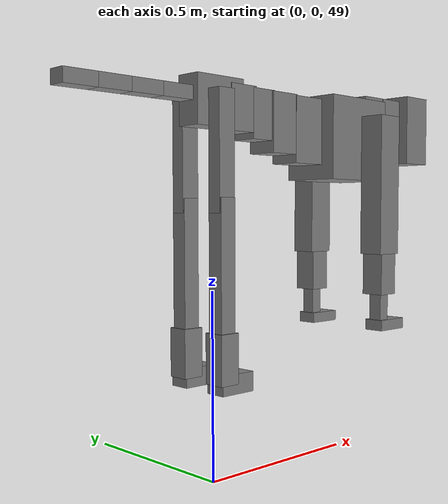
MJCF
<mujoco model="dog">

    <default>
        <joint armature="0.02" stiffness="1" damping="0.2" limited="true"/>
        <geom condim="3" friction="1 0.05 0.05" margin="0.01"/>
        <motor ctrllimited="true" ctrlrange="-1.0 1.0" forcelimited="true" gear="50"/>
    </default>

    <compiler inertiafromgeom="true" angle="radian"/>

    <option timestep="0.016" iterations="50" tolerance="1e-10" solver="Newton" jacobian="dense" cone="pyramidal"/>

    <size nconmax="20000" njmax="60000" nstack="5000000"/>
    <visual>
        <map force="0.1" zfar="30"/>
        <rgba haze="0.15 0.25 0.35 1"/>
        <quality shadowsize="2048"/>
        <global offwidth="800" offheight="800"/>
    </visual>

    <asset>
        <texture type="skybox" builtin="gradient" rgb1="0.3 0.5 0.7" rgb2="0 0 0" width="512" height="512"/>
        <texture name="texplane" type="2d" builtin="checker" rgb1=".2 .3 .4" rgb2=".1 0.15 0.2" width="512" height="512"
                 mark="cross" markrgb=".8 .8 .8"/>
        <texture name="texgeom" type="cube" builtin="flat" mark="cross" width="127" height="1278" rgb1="0.8 0.6 0.4"
                 rgb2="0.8 0.6 0.4" markrgb="1 1 1" random="0.01"/>

        <material name="matplane" reflectance="0.3" texture="texplane" texrepeat="1 1" texuniform="true"/>
        <material name="matgeom" texture="texgeom" texuniform="true" rgba="0.8 0.6 .4 1"/>
    </asset>

    <worldbody>
        <geom name="floor" pos="0 0 0" size="0 0 .25" type="plane" material="matplane" condim="3"/>

        <light directional="false" diffuse=".2 .2 .2" specular="0 0 0" pos="0 0 5" dir="0 0 -1" castshadow="false"/>
        <light mode="targetbodycom" target="torso" directional="false" diffuse=".8 .8 .8" specular="0.3 0.3 0.3"
               pos="0 0 4.0" dir="0 0 -1"/>

        <body name="root" pos="0 0 50">
            <freejoint name="root_1"/>
            <geom type="box" pos="0 0 -0.02" size="0.0774  0.0358  0.063" density="2030"/>

            <body name="spine1" pos="0.054 0 0">
                <joint name="spine1_y" axis="0 1 0" range="0 0.7" limited="true"/>
                <geom type="box" pos="0.02375 0 -0.03" size="0.04375  0.0375  0.05985" density="2030"/>

                <body name="spine2" pos="0.0612 0 0">
                    <joint name="spine2_y" axis="0 1 0" range="-0.15 0.15" limited="true"/>
                    <geom type="box" pos="0.03555  0  -0.04" size="0.04055  0.039  0.06615" density="2030"/>

                    <body name="spine3" pos="0.0730 0 0">
                        <joint name="spine3_y" axis="0 1 0" range="-0.15 0.15" limited="true"/>
                        <geom type="box" pos="0.03555  0  -0.057" size="0.04555  0.0445  0.081" density="2030"/>

                        <body name="spine4" pos="0.0780 0 0">
                            <joint name="spine4_y" axis="0 1 0" range="-0.15 0.15" limited="true"/>
                            <geom type="box" pos="0.05265  0  -0.07" size="0.05265  0.045  0.09135" density="2030"/>

                            <body name="torso" pos="0.1082 0 0">
                                <joint name="torso_y" axis="0 1 0" range="-0.15 0.15" limited="true"/>
                                <geom type="box" pos="0.11925  0  -0.085" size="0.11925  0.085  0.11745"
                                      density="2030"/>

                                <body name="neck1" pos="0.2160  0   0.0180">
                                    <joint name="neck1_y" axis="0 1 0" range="-1.2  -1" limited="true"/>
                                    <geom type="box" pos="0.0423  0  0" size="0.0423  0.03  0.036" density="2325"/>

                                    <body name="neck2" pos="0.0853  0  0">
                                        <joint name="neck2_y" axis="0 1 0" range="0.1  0" limited="true"/>
                                        <geom type="box" pos="0.0423  0  0" size="0.0423  0.03  0.036" density="2325"/>

                                        <body name="head" pos="0.0853  0  0">
                                            <joint name="head_y" axis="0 1 0" range="-0.3  -0.2" limited="true"/>
                                            <geom type="box" pos="0.0531  0  -0.055" size="0.0531  0.06  0.1044"
                                                  density="4030"/>

                                        </body>
                                    </body>
                                </body>

                                <body name="front_shoulder" pos="0.156  0   -0.0480">
                                    <joint name="front_shoulder_y" axis="0 1 0" range="-1 1.5" limited="true"/>
                                    <geom type="box" pos="0 0.13 -0.1705" size="0.0416  0.0355  0.1972" density="1158"/>
                                    <geom type="box" pos="0 -0.13 -0.1705" size="0.0416  0.0355  0.1972"
                                          density="1158"/>

                                    <body name="front_elbow" pos="0  0  -0.3410">
                                        <joint name="front_elbow_y" axis="0 1 0" range="-2 0" limited="true"/>
                                        <geom type="box" pos="0 0.13 -0.0718" size="0.0323  0.0330  0.0718"
                                              density="1081"/>
                                        <geom type="box" pos="0 -0.13 -0.0718" size="0.0323  0.0330  0.0718"
                                              density="1081"/>

                                        <body name="front_wrist" pos="0  0  -0.1436">
                                            <joint name="front_wrist_y" axis="0 1 0" range="-0.2 0" limited="true"/>
                                            <geom type="box" pos="0 0.13 -0.0448" size="0.0171  0.0190  0.0579"
                                                  density="1664"/>
                                            <geom type="box" pos="0 -0.13 -0.0448" size="0.0171  0.0190  0.0579"
                                                  density="1664"/>

                                            <body name="front_finger_end" pos="0  0  -0.0896">
                                                <joint name="front_finger_y" axis="0 1 0" range="-0.4 1"
                                                       limited="true"/>
                                                <geom type="box" pos="0.0287  0.13  -0.0002"
                                                      size="0.0526  0.0287  0.0152" density="1515"/>
                                                <geom type="box" pos="0.0287  -0.13  -0.0002"
                                                      size="0.0526  0.0287  0.0152" density="1515"/>

                                            </body>

                                        </body>
                                    </body>
                                </body>

                            </body>
                        </body>
                    </body>
                </body>
            </body>

            <body name="back_hip" pos="-0.03 0 -0.018">
                <joint name="back_hip_y" axis="0 1 0" range="-1.5 0.3" limited="true"/>
                <geom type="box" pos="0 0.07 -0.1292" size="0.0253  0.0198  0.1520" density="1154"/>
                <geom type="box" pos="0 -0.07 -0.1292" size="0.0253  0.0198  0.1520" density="1154"/>

                <body name="back_knee" pos="0  0  -0.2585">
                    <joint name="back_knee_y" axis="0 1 0" range="0 2.8" limited="true"/>
                    <geom type="box" pos="0 0.07 -0.1658" size="0.0229  0.0226  0.1814" density="1227"/>
                    <geom type="box" pos="0 -0.07 -0.1658" size="0.0229  0.0226  0.1814" density="1227"/>

                    <body name="back_ankle" pos="0  0  -0.3316">
                        <joint name="back_ankle_y" axis="0 1 0" range="-2.2 0" limited="true"/>
                        <geom type="box" pos="0 0.07 -0.0533" size="0.0290  0.0290  0.0645" density="1284"/>
                        <geom type="box" pos="0 -0.07 -0.0533" size="0.0290  0.0290  0.0645" density="1284"/>

                        <body name="back_toe_end" pos="0  0  -0.1066">
                            <joint name="back_toe_y" axis="0 1 0" range="-0.4 1" limited="true"/>
                            <geom type="box" pos="0.0283  0.07  -0.0104" size="0.0519  0.0283  0.0254" density="1515"/>
                            <geom type="box" pos="0.0283  -0.07  -0.0104" size="0.0519  0.0283  0.0254" density="1515"/>

                        </body>
                    </body>
                </body>
            </body>

            <body name="tail1" pos="-0.074 0 -0.006">
                <joint name="tail1_y" axis="0 1 0" range="-0.2 0.2" limited="true"/>
                <geom type="box" pos="-0.0536  0  0" size="0.045  0.025  0.0175" density="1587"/>

                <body name="tail2" pos="-0.09 0 0">
                    <joint name="tail2_y" axis="0 1 0" range="-0.2 0.2" limited="true"/>
                    <geom type="box" pos="-0.0536  0  0" size="0.045  0.025  0.0175" density="1587"/>

                    <body name="tail3" pos="-0.09 0 0">
                        <joint name="tail3_y" axis="0 1 0" range="-0.2 0.2" limited="true"/>
                        <geom type="box" pos="-0.0536  0  0" size="0.045  0.025  0.0175" density="1587"/>

                        <body name="tail4" pos="-0.09 0 0">
                            <joint name="tail4_y" axis="0 1 0" range="-0.2 0.2" limited="true"/>
                            <geom type="box" pos="-0.0536  0  0" size="0.045  0.025  0.0175" density="1587"/>

                        </body>
                    </body>
                </body>
            </body>
        </body>
    </worldbody>

    <actuator>
        <motor joint="spine1_y" forcerange="-150 150     "/>
        <motor joint="spine2_y" forcerange="-150 150     "/>
        <motor joint="spine3_y" forcerange="-150 150     "/>
        <motor joint="spine4_y" forcerange="-150 150     "/>
        <motor joint="torso_y" forcerange="-150 150     "/>
        <motor joint="neck1_y" forcerange="-100 100       "/>
        <motor joint="neck2_y" forcerange="-100 100       "/>
        <motor joint="head_y" forcerange="-150 150       "/>
        <motor joint="front_shoulder_y" forcerange="-169.64 167.27"/>
        <motor joint="front_elbow_y" forcerange="-149.70 190.66"/>
        <motor joint="front_wrist_y" forcerange="-60.09 92.04"/>
        <motor joint="front_finger_y" forcerange="-90.98 22.16"/>
        <motor joint="back_hip_y" forcerange="-245.56 218.95"/>
        <motor joint="back_knee_y" forcerange="-233.74 295.05"/>
        <motor joint="back_angle_y" forcerange="-230.21 134.13"/>
        <motor joint="back_toe_y" forcerange="-24.95 121.67"/>
        <motor joint="tail1_y" forcerange="-50 50     "/>
        <motor joint="tail2_y" forcerange="-50 50     "/>
        <motor joint="tail3_y" forcerange="-50 50     "/>
        <motor joint="tail4_y" forcerange="-50 50     "/>
    </actuator>
</mujoco>
